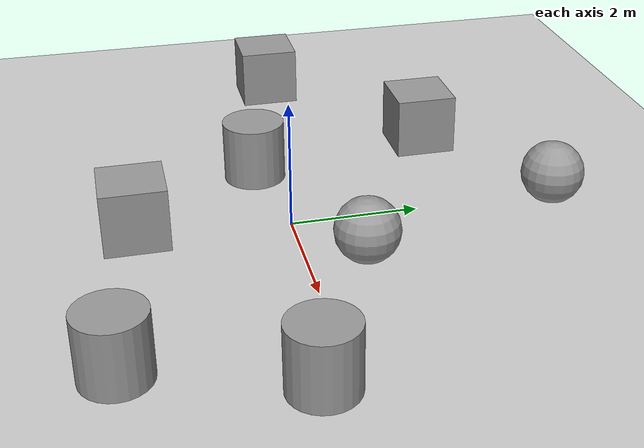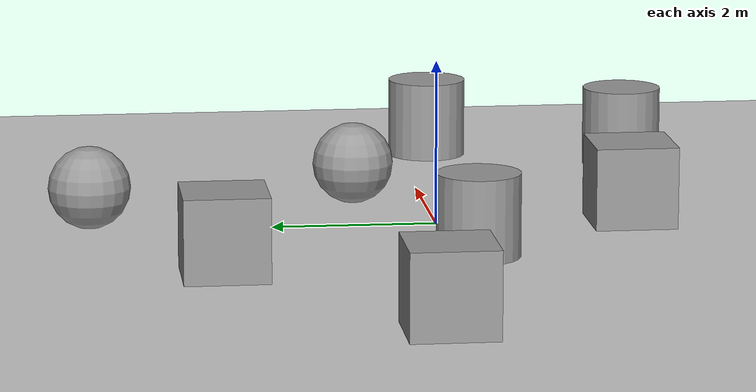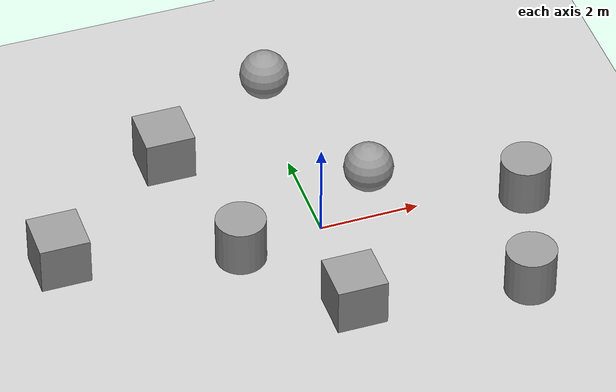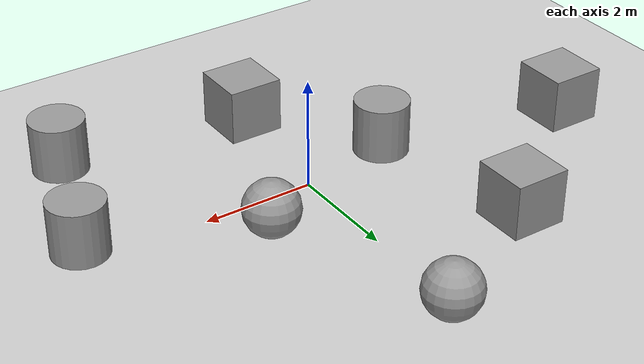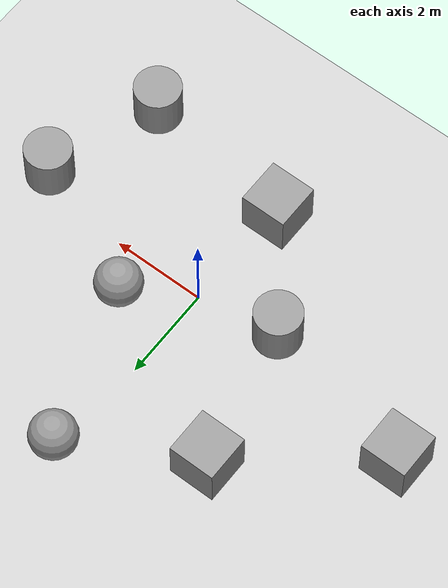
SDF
<sdf version="1.6">
 <world name="default">
  <light name="sun" type="directional">
   <pose>0 0 10 0 -0 0</pose>
   <diffuse>0.8 0.8 0.8 1</diffuse>
   <specular>0.2 0.2 0.2 1</specular>
   <attenuation>
    <range>1000</range>
    <constant>0.9</constant>
    <linear>0.01</linear>
    <quadratic>0.001</quadratic>
   </attenuation>
   <direction>-0.5 0.1 -0.9</direction>
  </light>
  <model name="ground_plane">
   <static>1</static>
   <link name="link">
    <collision name="collision">
     <geometry><plane><normal>0 0 1</normal><size>100 100</size></plane></geometry>
     <surface>
      <contact><collide_bitmask>65535</collide_bitmask></contact>
      <friction><ode><mu>100</mu><mu2>50</mu2></ode></friction>
     </surface>
    </collision>
    <visual name="visual">
     <cast_shadows>0</cast_shadows>
     <geometry><plane><normal>0 0 1</normal><size>100 100</size></plane></geometry>
     <material>
      <script><uri>file://media/materials/scripts/gazebo.material</uri><name>Gazebo/Grey</name></script>
     </material>
    </visual>
   </link>
  </model>
  <gravity>0 0 -9.8</gravity>
  <magnetic_field>6e-06 2.3e-05 -4.2e-05</magnetic_field>
  <atmosphere type="adiabatic"/>
  <physics name="default_physics" default="0" type="ode">
   <max_step_size>0.001</max_step_size>
   <real_time_factor>1</real_time_factor>
   <real_time_update_rate>1000</real_time_update_rate>
  </physics>
  <scene><ambient>0.4 0.4 0.4 1</ambient><background>0.7 0.7 0.7 1</background><shadows>1</shadows></scene>
  <audio><device>default</device></audio>
  <spherical_coordinates>
   <surface_model>EARTH_WGS84</surface_model>
   <latitude_deg>0</latitude_deg>
   <longitude_deg>0</longitude_deg>
   <elevation>0</elevation>
   <heading_deg>0</heading_deg>
  </spherical_coordinates>
  <model name="unit_box">
   <pose>-0.138875 -2.36666 0.499995 -1e-05 -0 -0</pose>
   <link name="link">
    <inertial>
     <mass>1</mass>
     <inertia>
      <ixx>0.166667</ixx>
      <ixy>0</ixy>
      <ixz>0</ixz>
      <iyy>0.166667</iyy>
      <iyz>0</iyz>
      <izz>0.166667</izz>
     </inertia>
    </inertial>
    <collision name="collision"><geometry><box><size>1 1 1</size></box></geometry></collision>
    <visual name="visual">
     <geometry><box><size>1 1 1</size></box></geometry>
     <material>
      <script><name>Gazebo/Grey</name><uri>file://media/materials/scripts/gazebo.material</uri></script>
     </material>
    </visual>
   </link>
  </model>
  <model name="unit_cylinder">
   <pose>-1.73056 -0.279902 0.499992 -3e-06 3e-06 0</pose>
   <link name="link">
    <inertial>
     <mass>1</mass>
     <inertia><ixx>0.145833</ixx><ixy>0</ixy><ixz>0</ixz><iyy>0.145833</iyy><iyz>0</iyz><izz>0.125</izz></inertia>
    </inertial>
    <collision name="collision">
     <geometry><cylinder><radius>0.5</radius><length>1</length></cylinder></geometry>
    </collision>
    <visual name="visual">
     <geometry><cylinder><radius>0.5</radius><length>1</length></cylinder></geometry>
     <material>
      <script><name>Gazebo/Grey</name><uri>file://media/materials/scripts/gazebo.material</uri></script>
     </material>
    </visual>
   </link>
  </model>
  <model name="unit_sphere">
   <pose>1.28686 0.876664 0.5 0 -0 0</pose>
   <link name="link">
    <inertial>
     <mass>1</mass>
     <inertia><ixx>0.1</ixx><ixy>0</ixy><ixz>0</ixz><iyy>0.1</iyy><iyz>0</iyz><izz>0.1</izz></inertia>
    </inertial>
    <collision name="collision"><geometry><sphere><radius>0.5</radius></sphere></geometry></collision>
    <visual name="visual">
     <geometry><sphere><radius>0.5</radius></sphere></geometry>
     <material>
      <script><name>Gazebo/Grey</name><uri>file://media/materials/scripts/gazebo.material</uri></script>
     </material>
    </visual>
   </link>
  </model>
  <model name="unit_cylinder_0">
   <pose>3.25792 -2.85415 0.499992 -3e-06 4e-06 0</pose>
   <link name="link">
    <inertial>
     <mass>1</mass>
     <inertia><ixx>0.145833</ixx><ixy>0</ixy><ixz>0</ixz><iyy>0.145833</iyy><iyz>0</iyz><izz>0.125</izz></inertia>
    </inertial>
    <collision name="collision">
     <geometry><cylinder><radius>0.5</radius><length>1</length></cylinder></geometry>
    </collision>
    <visual name="visual">
     <geometry><cylinder><radius>0.5</radius><length>1</length></cylinder></geometry>
     <material>
      <script><name>Gazebo/Grey</name><uri>file://media/materials/scripts/gazebo.material</uri></script>
     </material>
    </visual>
   </link>
  </model>
  <model name="unit_box_0">
   <pose>-2.35241 2.74142 0.499995 -1e-05 -0 -0</pose>
   <link name="link">
    <inertial>
     <mass>1</mass>
     <inertia>
      <ixx>0.166667</ixx>
      <ixy>0</ixy>
      <ixz>0</ixz>
      <iyy>0.166667</iyy>
      <iyz>0</iyz>
      <izz>0.166667</izz>
     </inertia>
    </inertial>
    <collision name="collision"><geometry><box><size>1 1 1</size></box></geometry></collision>
    <visual name="visual">
     <geometry><box><size>1 1 1</size></box></geometry>
     <material>
      <script><name>Gazebo/Grey</name><uri>file://media/materials/scripts/gazebo.material</uri></script>
     </material>
    </visual>
   </link>
  </model>
  <model name="unit_sphere_0">
   <pose>0.213718 4.18538 0.5 0 -0 0</pose>
   <link name="link">
    <inertial>
     <mass>1</mass>
     <inertia><ixx>0.1</ixx><ixy>0</ixy><ixz>0</ixz><iyy>0.1</iyy><iyz>0</iyz><izz>0.1</izz></inertia>
    </inertial>
    <collision name="collision"><geometry><sphere><radius>0.5</radius></sphere></geometry></collision>
    <visual name="visual">
     <geometry><sphere><radius>0.5</radius></sphere></geometry>
     <material>
      <script><name>Gazebo/Grey</name><uri>file://media/materials/scripts/gazebo.material</uri></script>
     </material>
    </visual>
   </link>
  </model>
  <model name="unit_cylinder_1">
   <pose>4.08881 -0.402243 0.499997 3e-06 4e-06 -0</pose>
   <link name="link">
    <inertial>
     <mass>1</mass>
     <inertia><ixx>0.145833</ixx><ixy>0</ixy><ixz>0</ixz><iyy>0.145833</iyy><iyz>0</iyz><izz>0.125</izz></inertia>
    </inertial>
    <collision name="collision">
     <geometry><cylinder><radius>0.5</radius><length>1</length></cylinder></geometry>
    </collision>
    <visual name="visual">
     <geometry><cylinder><radius>0.5</radius><length>1</length></cylinder></geometry>
     <material>
      <script><name>Gazebo/Grey</name><uri>file://media/materials/scripts/gazebo.material</uri></script>
     </material>
    </visual>
   </link>
  </model>
  <model name="unit_box_1">
   <pose>-5.14827 0.511569 0.499995 -1e-05 -0 0</pose>
   <link name="link">
    <inertial>
     <mass>1</mass>
     <inertia>
      <ixx>0.166667</ixx>
      <ixy>0</ixy>
      <ixz>0</ixz>
      <iyy>0.166667</iyy>
      <iyz>0</iyz>
      <izz>0.166667</izz>
     </inertia>
    </inertial>
    <collision name="collision"><geometry><box><size>1 1 1</size></box></geometry></collision>
    <visual name="visual">
     <geometry><box><size>1 1 1</size></box></geometry>
     <material>
      <script><name>Gazebo/Grey</name><uri>file://media/materials/scripts/gazebo.material</uri></script>
     </material>
    </visual>
   </link>
  </model>
 </world>
</sdf>
